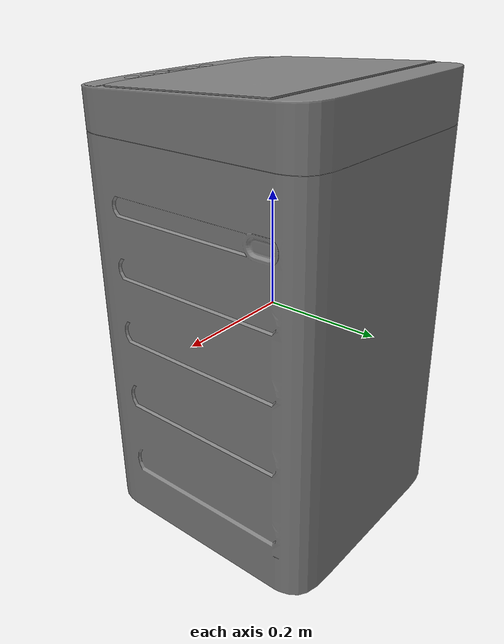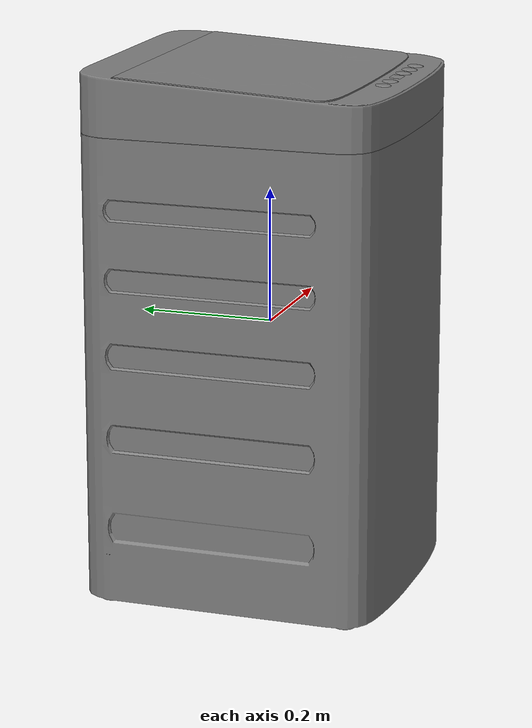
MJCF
<?xml version='1.0' encoding='utf-8'?>
<mujoco model="ra_048">
  <compiler angle="radian" meshdir="." />
  <asset>
    <mesh name="mesh_0" file="assets/body.obj" />
    <mesh name="mesh_1" file="assets/part_06.obj" />
    <mesh name="mesh_2" file="assets/part_01.obj" />
    <mesh name="mesh_3" file="assets/part_07.obj" />
    <mesh name="mesh_4" file="assets/part_05.obj" />
    <mesh name="mesh_5" file="assets/part_00.obj" />
    <mesh name="mesh_6" file="assets/part_03.obj" />
    <mesh name="mesh_7" file="assets/part_02.obj" />
    <mesh name="mesh_8" file="assets/part_04.obj" />
  </asset>
  <worldbody>
    <body name="mesh_0" pos="0 0 0">
      <geom name="mesh_0_visual" type="mesh" mesh="mesh_0" group="2" contype="0" conaffinity="0" />
    </body>
    <body name="mesh_1" pos="0 0 0">
      <geom name="mesh_1_visual" type="mesh" mesh="mesh_1" group="2" contype="0" conaffinity="0" />
    </body>
    <body name="mesh_2" pos="0 0 0">
      <geom name="mesh_2_visual" type="mesh" mesh="mesh_2" group="2" contype="0" conaffinity="0" />
    </body>
    <body name="mesh_3" pos="0 0 0">
      <geom name="mesh_3_visual" type="mesh" mesh="mesh_3" group="2" contype="0" conaffinity="0" />
    </body>
    <body name="mesh_4" pos="0 0 0">
      <geom name="mesh_4_visual" type="mesh" mesh="mesh_4" group="2" contype="0" conaffinity="0" />
    </body>
    <body name="mesh_5" pos="0 0 0">
      <geom name="mesh_5_visual" type="mesh" mesh="mesh_5" group="2" contype="0" conaffinity="0" />
    </body>
    <body name="mesh_6" pos="0 0 0">
      <geom name="mesh_6_visual" type="mesh" mesh="mesh_6" group="2" contype="0" conaffinity="0" />
    </body>
    <body name="mesh_7" pos="0 0 0">
      <geom name="mesh_7_visual" type="mesh" mesh="mesh_7" group="2" contype="0" conaffinity="0" />
    </body>
    <body name="mesh_8" pos="0 0 0">
      <geom name="mesh_8_visual" type="mesh" mesh="mesh_8" group="2" contype="0" conaffinity="0" />
    </body>
  </worldbody>
</mujoco>
